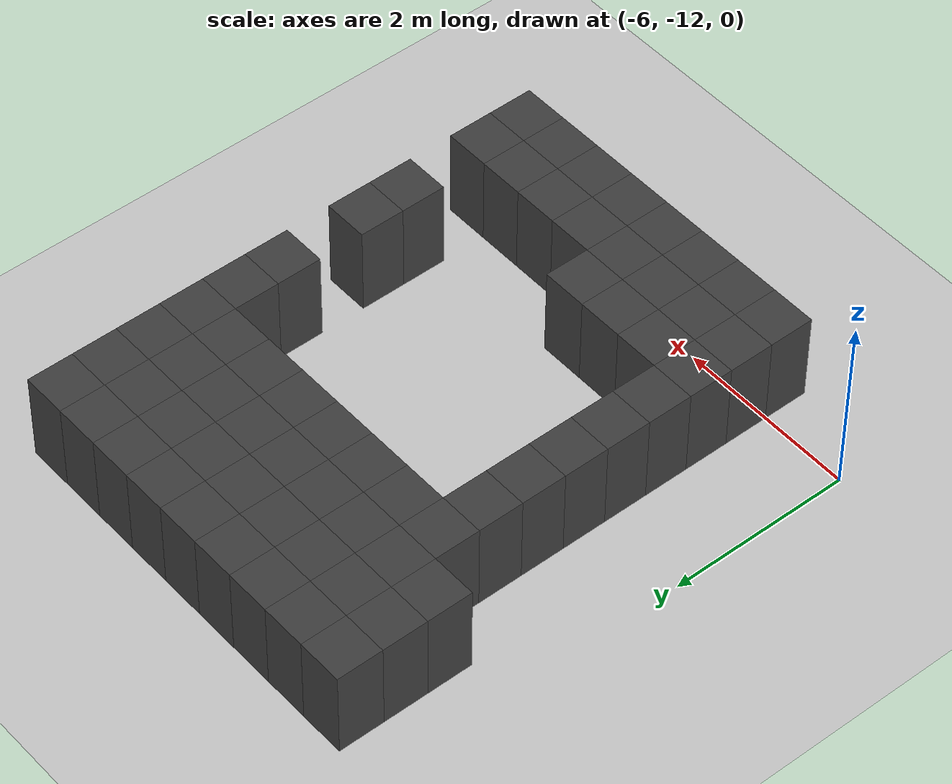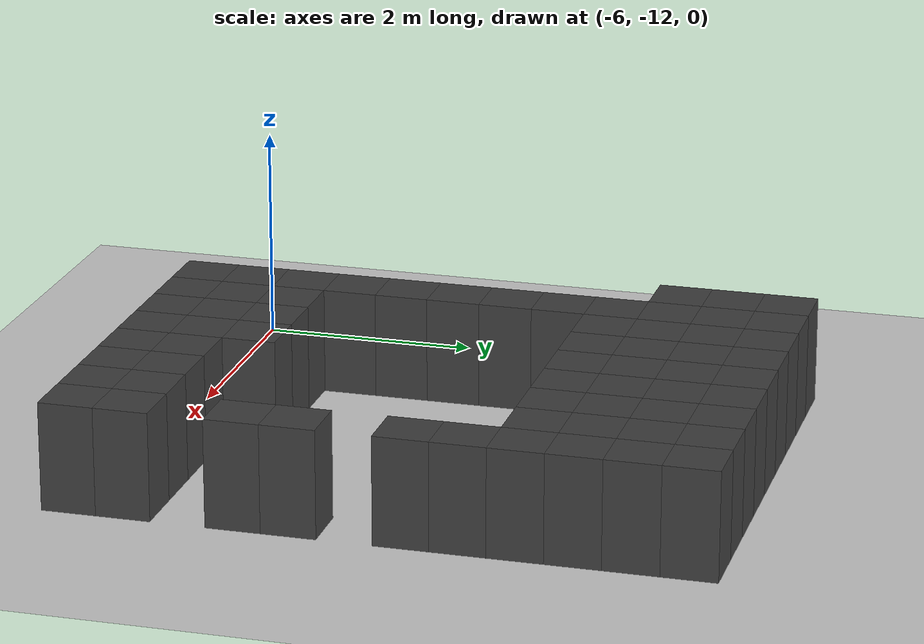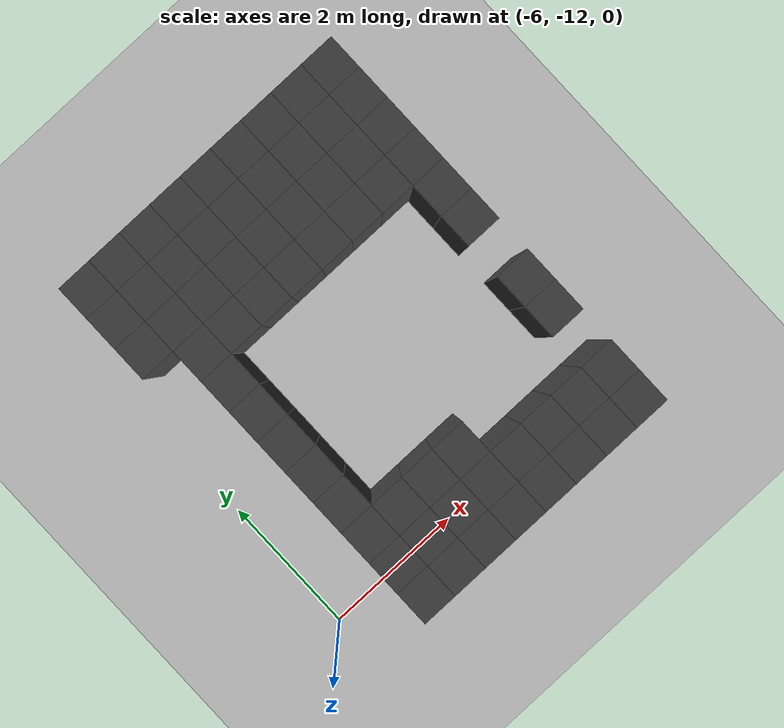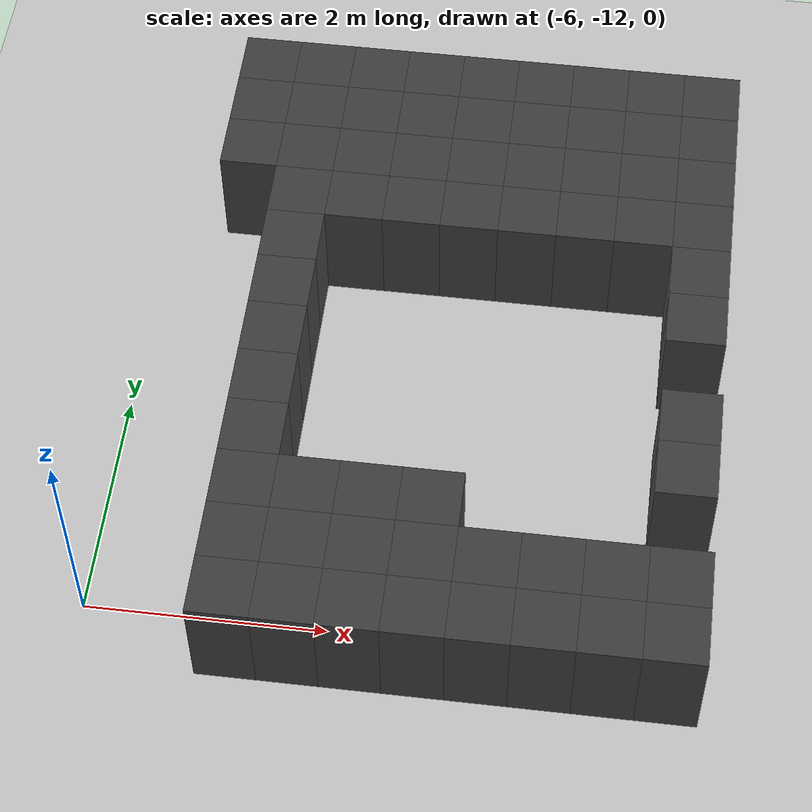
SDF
<sdf version="1.7">
 <world name="map_11515">
  <model name="ground_plane">
   <static>true</static>
   <link name="link">
    <collision name="collision">
     <geometry><plane><normal>0 0 1</normal><size>200 200</size></plane></geometry>
    </collision>
    <visual name="visual">
     <geometry><plane><normal>0 0 1</normal><size>200 200</size></plane></geometry>
     <material><ambient>0.8 0.8 0.8 1</ambient><diffuse>0.8 0.8 0.8 1</diffuse></material>
    </visual>
   </link>
  </model>
  <model name="maze_environment">
   <static>true</static>
   <link name="wall_1664">
    <pose>-5.250 -6.750 0.500 0 0 0</pose>
    <collision name="col"><geometry><box><size>0.5 0.5 1.0</size></box></geometry></collision>
    <visual name="vis">
     <geometry><box><size>0.5 0.5 1.0</size></box></geometry>
     <material><ambient>0.15 0.15 0.15 1</ambient><diffuse>0.25 0.25 0.25 1</diffuse></material>
    </visual>
   </link>
   <link name="wall_1665">
    <pose>-4.750 -6.750 0.500 0 0 0</pose>
    <collision name="col"><geometry><box><size>0.5 0.5 1.0</size></box></geometry></collision>
    <visual name="vis">
     <geometry><box><size>0.5 0.5 1.0</size></box></geometry>
     <material><ambient>0.15 0.15 0.15 1</ambient><diffuse>0.25 0.25 0.25 1</diffuse></material>
    </visual>
   </link>
   <link name="wall_1666">
    <pose>-4.250 -6.750 0.500 0 0 0</pose>
    <collision name="col"><geometry><box><size>0.5 0.5 1.0</size></box></geometry></collision>
    <visual name="vis">
     <geometry><box><size>0.5 0.5 1.0</size></box></geometry>
     <material><ambient>0.15 0.15 0.15 1</ambient><diffuse>0.25 0.25 0.25 1</diffuse></material>
    </visual>
   </link>
   <link name="wall_1667">
    <pose>-3.750 -6.750 0.500 0 0 0</pose>
    <collision name="col"><geometry><box><size>0.5 0.5 1.0</size></box></geometry></collision>
    <visual name="vis">
     <geometry><box><size>0.5 0.5 1.0</size></box></geometry>
     <material><ambient>0.15 0.15 0.15 1</ambient><diffuse>0.25 0.25 0.25 1</diffuse></material>
    </visual>
   </link>
   <link name="wall_1668">
    <pose>-3.250 -6.750 0.500 0 0 0</pose>
    <collision name="col"><geometry><box><size>0.5 0.5 1.0</size></box></geometry></collision>
    <visual name="vis">
     <geometry><box><size>0.5 0.5 1.0</size></box></geometry>
     <material><ambient>0.15 0.15 0.15 1</ambient><diffuse>0.25 0.25 0.25 1</diffuse></material>
    </visual>
   </link>
   <link name="wall_1669">
    <pose>-2.750 -6.750 0.500 0 0 0</pose>
    <collision name="col"><geometry><box><size>0.5 0.5 1.0</size></box></geometry></collision>
    <visual name="vis">
     <geometry><box><size>0.5 0.5 1.0</size></box></geometry>
     <material><ambient>0.15 0.15 0.15 1</ambient><diffuse>0.25 0.25 0.25 1</diffuse></material>
    </visual>
   </link>
   <link name="wall_1670">
    <pose>-2.250 -6.750 0.500 0 0 0</pose>
    <collision name="col"><geometry><box><size>0.5 0.5 1.0</size></box></geometry></collision>
    <visual name="vis">
     <geometry><box><size>0.5 0.5 1.0</size></box></geometry>
     <material><ambient>0.15 0.15 0.15 1</ambient><diffuse>0.25 0.25 0.25 1</diffuse></material>
    </visual>
   </link>
   <link name="wall_1671">
    <pose>-1.750 -6.750 0.500 0 0 0</pose>
    <collision name="col"><geometry><box><size>0.5 0.5 1.0</size></box></geometry></collision>
    <visual name="vis">
     <geometry><box><size>0.5 0.5 1.0</size></box></geometry>
     <material><ambient>0.15 0.15 0.15 1</ambient><diffuse>0.25 0.25 0.25 1</diffuse></material>
    </visual>
   </link>
   <link name="wall_1672">
    <pose>-1.250 -6.750 0.500 0 0 0</pose>
    <collision name="col"><geometry><box><size>0.5 0.5 1.0</size></box></geometry></collision>
    <visual name="vis">
     <geometry><box><size>0.5 0.5 1.0</size></box></geometry>
     <material><ambient>0.15 0.15 0.15 1</ambient><diffuse>0.25 0.25 0.25 1</diffuse></material>
    </visual>
   </link>
   <link name="wall_1713">
    <pose>-5.250 -7.250 0.500 0 0 0</pose>
    <collision name="col"><geometry><box><size>0.5 0.5 1.0</size></box></geometry></collision>
    <visual name="vis">
     <geometry><box><size>0.5 0.5 1.0</size></box></geometry>
     <material><ambient>0.15 0.15 0.15 1</ambient><diffuse>0.25 0.25 0.25 1</diffuse></material>
    </visual>
   </link>
   <link name="wall_1714">
    <pose>-4.750 -7.250 0.500 0 0 0</pose>
    <collision name="col"><geometry><box><size>0.5 0.5 1.0</size></box></geometry></collision>
    <visual name="vis">
     <geometry><box><size>0.5 0.5 1.0</size></box></geometry>
     <material><ambient>0.15 0.15 0.15 1</ambient><diffuse>0.25 0.25 0.25 1</diffuse></material>
    </visual>
   </link>
   <link name="wall_1715">
    <pose>-4.250 -7.250 0.500 0 0 0</pose>
    <collision name="col"><geometry><box><size>0.5 0.5 1.0</size></box></geometry></collision>
    <visual name="vis">
     <geometry><box><size>0.5 0.5 1.0</size></box></geometry>
     <material><ambient>0.15 0.15 0.15 1</ambient><diffuse>0.25 0.25 0.25 1</diffuse></material>
    </visual>
   </link>
   <link name="wall_1716">
    <pose>-3.750 -7.250 0.500 0 0 0</pose>
    <collision name="col"><geometry><box><size>0.5 0.5 1.0</size></box></geometry></collision>
    <visual name="vis">
     <geometry><box><size>0.5 0.5 1.0</size></box></geometry>
     <material><ambient>0.15 0.15 0.15 1</ambient><diffuse>0.25 0.25 0.25 1</diffuse></material>
    </visual>
   </link>
   <link name="wall_1717">
    <pose>-3.250 -7.250 0.500 0 0 0</pose>
    <collision name="col"><geometry><box><size>0.5 0.5 1.0</size></box></geometry></collision>
    <visual name="vis">
     <geometry><box><size>0.5 0.5 1.0</size></box></geometry>
     <material><ambient>0.15 0.15 0.15 1</ambient><diffuse>0.25 0.25 0.25 1</diffuse></material>
    </visual>
   </link>
   <link name="wall_1718">
    <pose>-2.750 -7.250 0.500 0 0 0</pose>
    <collision name="col"><geometry><box><size>0.5 0.5 1.0</size></box></geometry></collision>
    <visual name="vis">
     <geometry><box><size>0.5 0.5 1.0</size></box></geometry>
     <material><ambient>0.15 0.15 0.15 1</ambient><diffuse>0.25 0.25 0.25 1</diffuse></material>
    </visual>
   </link>
   <link name="wall_1719">
    <pose>-2.250 -7.250 0.500 0 0 0</pose>
    <collision name="col"><geometry><box><size>0.5 0.5 1.0</size></box></geometry></collision>
    <visual name="vis">
     <geometry><box><size>0.5 0.5 1.0</size></box></geometry>
     <material><ambient>0.15 0.15 0.15 1</ambient><diffuse>0.25 0.25 0.25 1</diffuse></material>
    </visual>
   </link>
   <link name="wall_1720">
    <pose>-1.750 -7.250 0.500 0 0 0</pose>
    <collision name="col"><geometry><box><size>0.5 0.5 1.0</size></box></geometry></collision>
    <visual name="vis">
     <geometry><box><size>0.5 0.5 1.0</size></box></geometry>
     <material><ambient>0.15 0.15 0.15 1</ambient><diffuse>0.25 0.25 0.25 1</diffuse></material>
    </visual>
   </link>
   <link name="wall_1721">
    <pose>-1.250 -7.250 0.500 0 0 0</pose>
    <collision name="col"><geometry><box><size>0.5 0.5 1.0</size></box></geometry></collision>
    <visual name="vis">
     <geometry><box><size>0.5 0.5 1.0</size></box></geometry>
     <material><ambient>0.15 0.15 0.15 1</ambient><diffuse>0.25 0.25 0.25 1</diffuse></material>
    </visual>
   </link>
   <link name="wall_1762">
    <pose>-5.250 -7.750 0.500 0 0 0</pose>
    <collision name="col"><geometry><box><size>0.5 0.5 1.0</size></box></geometry></collision>
    <visual name="vis">
     <geometry><box><size>0.5 0.5 1.0</size></box></geometry>
     <material><ambient>0.15 0.15 0.15 1</ambient><diffuse>0.25 0.25 0.25 1</diffuse></material>
    </visual>
   </link>
   <link name="wall_1763">
    <pose>-4.750 -7.750 0.500 0 0 0</pose>
    <collision name="col"><geometry><box><size>0.5 0.5 1.0</size></box></geometry></collision>
    <visual name="vis">
     <geometry><box><size>0.5 0.5 1.0</size></box></geometry>
     <material><ambient>0.15 0.15 0.15 1</ambient><diffuse>0.25 0.25 0.25 1</diffuse></material>
    </visual>
   </link>
   <link name="wall_1764">
    <pose>-4.250 -7.750 0.500 0 0 0</pose>
    <collision name="col"><geometry><box><size>0.5 0.5 1.0</size></box></geometry></collision>
    <visual name="vis">
     <geometry><box><size>0.5 0.5 1.0</size></box></geometry>
     <material><ambient>0.15 0.15 0.15 1</ambient><diffuse>0.25 0.25 0.25 1</diffuse></material>
    </visual>
   </link>
   <link name="wall_1765">
    <pose>-3.750 -7.750 0.500 0 0 0</pose>
    <collision name="col"><geometry><box><size>0.5 0.5 1.0</size></box></geometry></collision>
    <visual name="vis">
     <geometry><box><size>0.5 0.5 1.0</size></box></geometry>
     <material><ambient>0.15 0.15 0.15 1</ambient><diffuse>0.25 0.25 0.25 1</diffuse></material>
    </visual>
   </link>
   <link name="wall_1766">
    <pose>-3.250 -7.750 0.500 0 0 0</pose>
    <collision name="col"><geometry><box><size>0.5 0.5 1.0</size></box></geometry></collision>
    <visual name="vis">
     <geometry><box><size>0.5 0.5 1.0</size></box></geometry>
     <material><ambient>0.15 0.15 0.15 1</ambient><diffuse>0.25 0.25 0.25 1</diffuse></material>
    </visual>
   </link>
   <link name="wall_1767">
    <pose>-2.750 -7.750 0.500 0 0 0</pose>
    <collision name="col"><geometry><box><size>0.5 0.5 1.0</size></box></geometry></collision>
    <visual name="vis">
     <geometry><box><size>0.5 0.5 1.0</size></box></geometry>
     <material><ambient>0.15 0.15 0.15 1</ambient><diffuse>0.25 0.25 0.25 1</diffuse></material>
    </visual>
   </link>
   <link name="wall_1768">
    <pose>-2.250 -7.750 0.500 0 0 0</pose>
    <collision name="col"><geometry><box><size>0.5 0.5 1.0</size></box></geometry></collision>
    <visual name="vis">
     <geometry><box><size>0.5 0.5 1.0</size></box></geometry>
     <material><ambient>0.15 0.15 0.15 1</ambient><diffuse>0.25 0.25 0.25 1</diffuse></material>
    </visual>
   </link>
   <link name="wall_1769">
    <pose>-1.750 -7.750 0.500 0 0 0</pose>
    <collision name="col"><geometry><box><size>0.5 0.5 1.0</size></box></geometry></collision>
    <visual name="vis">
     <geometry><box><size>0.5 0.5 1.0</size></box></geometry>
     <material><ambient>0.15 0.15 0.15 1</ambient><diffuse>0.25 0.25 0.25 1</diffuse></material>
    </visual>
   </link>
   <link name="wall_1770">
    <pose>-1.250 -7.750 0.500 0 0 0</pose>
    <collision name="col"><geometry><box><size>0.5 0.5 1.0</size></box></geometry></collision>
    <visual name="vis">
     <geometry><box><size>0.5 0.5 1.0</size></box></geometry>
     <material><ambient>0.15 0.15 0.15 1</ambient><diffuse>0.25 0.25 0.25 1</diffuse></material>
    </visual>
   </link>
   <link name="wall_1812">
    <pose>-4.750 -8.250 0.500 0 0 0</pose>
    <collision name="col"><geometry><box><size>0.5 0.5 1.0</size></box></geometry></collision>
    <visual name="vis">
     <geometry><box><size>0.5 0.5 1.0</size></box></geometry>
     <material><ambient>0.15 0.15 0.15 1</ambient><diffuse>0.25 0.25 0.25 1</diffuse></material>
    </visual>
   </link>
   <link name="wall_1813">
    <pose>-4.250 -8.250 0.500 0 0 0</pose>
    <collision name="col"><geometry><box><size>0.5 0.5 1.0</size></box></geometry></collision>
    <visual name="vis">
     <geometry><box><size>0.5 0.5 1.0</size></box></geometry>
     <material><ambient>0.15 0.15 0.15 1</ambient><diffuse>0.25 0.25 0.25 1</diffuse></material>
    </visual>
   </link>
   <link name="wall_1814">
    <pose>-3.750 -8.250 0.500 0 0 0</pose>
    <collision name="col"><geometry><box><size>0.5 0.5 1.0</size></box></geometry></collision>
    <visual name="vis">
     <geometry><box><size>0.5 0.5 1.0</size></box></geometry>
     <material><ambient>0.15 0.15 0.15 1</ambient><diffuse>0.25 0.25 0.25 1</diffuse></material>
    </visual>
   </link>
   <link name="wall_1815">
    <pose>-3.250 -8.250 0.500 0 0 0</pose>
    <collision name="col"><geometry><box><size>0.5 0.5 1.0</size></box></geometry></collision>
    <visual name="vis">
     <geometry><box><size>0.5 0.5 1.0</size></box></geometry>
     <material><ambient>0.15 0.15 0.15 1</ambient><diffuse>0.25 0.25 0.25 1</diffuse></material>
    </visual>
   </link>
   <link name="wall_1816">
    <pose>-2.750 -8.250 0.500 0 0 0</pose>
    <collision name="col"><geometry><box><size>0.5 0.5 1.0</size></box></geometry></collision>
    <visual name="vis">
     <geometry><box><size>0.5 0.5 1.0</size></box></geometry>
     <material><ambient>0.15 0.15 0.15 1</ambient><diffuse>0.25 0.25 0.25 1</diffuse></material>
    </visual>
   </link>
   <link name="wall_1817">
    <pose>-2.250 -8.250 0.500 0 0 0</pose>
    <collision name="col"><geometry><box><size>0.5 0.5 1.0</size></box></geometry></collision>
    <visual name="vis">
     <geometry><box><size>0.5 0.5 1.0</size></box></geometry>
     <material><ambient>0.15 0.15 0.15 1</ambient><diffuse>0.25 0.25 0.25 1</diffuse></material>
    </visual>
   </link>
   <link name="wall_1818">
    <pose>-1.750 -8.250 0.500 0 0 0</pose>
    <collision name="col"><geometry><box><size>0.5 0.5 1.0</size></box></geometry></collision>
    <visual name="vis">
     <geometry><box><size>0.5 0.5 1.0</size></box></geometry>
     <material><ambient>0.15 0.15 0.15 1</ambient><diffuse>0.25 0.25 0.25 1</diffuse></material>
    </visual>
   </link>
   <link name="wall_1819">
    <pose>-1.250 -8.250 0.500 0 0 0</pose>
    <collision name="col"><geometry><box><size>0.5 0.5 1.0</size></box></geometry></collision>
    <visual name="vis">
     <geometry><box><size>0.5 0.5 1.0</size></box></geometry>
     <material><ambient>0.15 0.15 0.15 1</ambient><diffuse>0.25 0.25 0.25 1</diffuse></material>
    </visual>
   </link>
   <link name="wall_1861">
    <pose>-4.750 -8.750 0.500 0 0 0</pose>
    <collision name="col"><geometry><box><size>0.5 0.5 1.0</size></box></geometry></collision>
    <visual name="vis">
     <geometry><box><size>0.5 0.5 1.0</size></box></geometry>
     <material><ambient>0.15 0.15 0.15 1</ambient><diffuse>0.25 0.25 0.25 1</diffuse></material>
    </visual>
   </link>
   <link name="wall_1862">
    <pose>-1.250 -8.750 0.500 0 0 0</pose>
    <collision name="col"><geometry><box><size>0.5 0.5 1.0</size></box></geometry></collision>
    <visual name="vis">
     <geometry><box><size>0.5 0.5 1.0</size></box></geometry>
     <material><ambient>0.15 0.15 0.15 1</ambient><diffuse>0.25 0.25 0.25 1</diffuse></material>
    </visual>
   </link>
   <link name="wall_1904">
    <pose>-4.750 -9.250 0.500 0 0 0</pose>
    <collision name="col"><geometry><box><size>0.5 0.5 1.0</size></box></geometry></collision>
    <visual name="vis">
     <geometry><box><size>0.5 0.5 1.0</size></box></geometry>
     <material><ambient>0.15 0.15 0.15 1</ambient><diffuse>0.25 0.25 0.25 1</diffuse></material>
    </visual>
   </link>
   <link name="wall_1905">
    <pose>-1.250 -9.250 0.500 0 0 0</pose>
    <collision name="col"><geometry><box><size>0.5 0.5 1.0</size></box></geometry></collision>
    <visual name="vis">
     <geometry><box><size>0.5 0.5 1.0</size></box></geometry>
     <material><ambient>0.15 0.15 0.15 1</ambient><diffuse>0.25 0.25 0.25 1</diffuse></material>
    </visual>
   </link>
   <link name="wall_1947">
    <pose>-4.750 -9.750 0.500 0 0 0</pose>
    <collision name="col"><geometry><box><size>0.5 0.5 1.0</size></box></geometry></collision>
    <visual name="vis">
     <geometry><box><size>0.5 0.5 1.0</size></box></geometry>
     <material><ambient>0.15 0.15 0.15 1</ambient><diffuse>0.25 0.25 0.25 1</diffuse></material>
    </visual>
   </link>
   <link name="wall_1989">
    <pose>-4.750 -10.250 0.500 0 0 0</pose>
    <collision name="col"><geometry><box><size>0.5 0.5 1.0</size></box></geometry></collision>
    <visual name="vis">
     <geometry><box><size>0.5 0.5 1.0</size></box></geometry>
     <material><ambient>0.15 0.15 0.15 1</ambient><diffuse>0.25 0.25 0.25 1</diffuse></material>
    </visual>
   </link>
   <link name="wall_1990">
    <pose>-1.250 -10.250 0.500 0 0 0</pose>
    <collision name="col"><geometry><box><size>0.5 0.5 1.0</size></box></geometry></collision>
    <visual name="vis">
     <geometry><box><size>0.5 0.5 1.0</size></box></geometry>
     <material><ambient>0.15 0.15 0.15 1</ambient><diffuse>0.25 0.25 0.25 1</diffuse></material>
    </visual>
   </link>
   <link name="wall_2033">
    <pose>-4.750 -10.750 0.500 0 0 0</pose>
    <collision name="col"><geometry><box><size>0.5 0.5 1.0</size></box></geometry></collision>
    <visual name="vis">
     <geometry><box><size>0.5 0.5 1.0</size></box></geometry>
     <material><ambient>0.15 0.15 0.15 1</ambient><diffuse>0.25 0.25 0.25 1</diffuse></material>
    </visual>
   </link>
   <link name="wall_2034">
    <pose>-1.250 -10.750 0.500 0 0 0</pose>
    <collision name="col"><geometry><box><size>0.5 0.5 1.0</size></box></geometry></collision>
    <visual name="vis">
     <geometry><box><size>0.5 0.5 1.0</size></box></geometry>
     <material><ambient>0.15 0.15 0.15 1</ambient><diffuse>0.25 0.25 0.25 1</diffuse></material>
    </visual>
   </link>
   <link name="wall_2074">
    <pose>-4.750 -11.250 0.500 0 0 0</pose>
    <collision name="col"><geometry><box><size>0.5 0.5 1.0</size></box></geometry></collision>
    <visual name="vis">
     <geometry><box><size>0.5 0.5 1.0</size></box></geometry>
     <material><ambient>0.15 0.15 0.15 1</ambient><diffuse>0.25 0.25 0.25 1</diffuse></material>
    </visual>
   </link>
   <link name="wall_2075">
    <pose>-4.250 -11.250 0.500 0 0 0</pose>
    <collision name="col"><geometry><box><size>0.5 0.5 1.0</size></box></geometry></collision>
    <visual name="vis">
     <geometry><box><size>0.5 0.5 1.0</size></box></geometry>
     <material><ambient>0.15 0.15 0.15 1</ambient><diffuse>0.25 0.25 0.25 1</diffuse></material>
    </visual>
   </link>
   <link name="wall_2076">
    <pose>-3.750 -11.250 0.500 0 0 0</pose>
    <collision name="col"><geometry><box><size>0.5 0.5 1.0</size></box></geometry></collision>
    <visual name="vis">
     <geometry><box><size>0.5 0.5 1.0</size></box></geometry>
     <material><ambient>0.15 0.15 0.15 1</ambient><diffuse>0.25 0.25 0.25 1</diffuse></material>
    </visual>
   </link>
   <link name="wall_2077">
    <pose>-3.250 -11.250 0.500 0 0 0</pose>
    <collision name="col"><geometry><box><size>0.5 0.5 1.0</size></box></geometry></collision>
    <visual name="vis">
     <geometry><box><size>0.5 0.5 1.0</size></box></geometry>
     <material><ambient>0.15 0.15 0.15 1</ambient><diffuse>0.25 0.25 0.25 1</diffuse></material>
    </visual>
   </link>
   <link name="wall_2094">
    <pose>-4.750 -11.750 0.500 0 0 0</pose>
    <collision name="col"><geometry><box><size>0.5 0.5 1.0</size></box></geometry></collision>
    <visual name="vis">
     <geometry><box><size>0.5 0.5 1.0</size></box></geometry>
     <material><ambient>0.15 0.15 0.15 1</ambient><diffuse>0.25 0.25 0.25 1</diffuse></material>
    </visual>
   </link>
   <link name="wall_2095">
    <pose>-4.250 -11.750 0.500 0 0 0</pose>
    <collision name="col"><geometry><box><size>0.5 0.5 1.0</size></box></geometry></collision>
    <visual name="vis">
     <geometry><box><size>0.5 0.5 1.0</size></box></geometry>
     <material><ambient>0.15 0.15 0.15 1</ambient><diffuse>0.25 0.25 0.25 1</diffuse></material>
    </visual>
   </link>
   <link name="wall_2096">
    <pose>-3.750 -11.750 0.500 0 0 0</pose>
    <collision name="col"><geometry><box><size>0.5 0.5 1.0</size></box></geometry></collision>
    <visual name="vis">
     <geometry><box><size>0.5 0.5 1.0</size></box></geometry>
     <material><ambient>0.15 0.15 0.15 1</ambient><diffuse>0.25 0.25 0.25 1</diffuse></material>
    </visual>
   </link>
   <link name="wall_2097">
    <pose>-3.250 -11.750 0.500 0 0 0</pose>
    <collision name="col"><geometry><box><size>0.5 0.5 1.0</size></box></geometry></collision>
    <visual name="vis">
     <geometry><box><size>0.5 0.5 1.0</size></box></geometry>
     <material><ambient>0.15 0.15 0.15 1</ambient><diffuse>0.25 0.25 0.25 1</diffuse></material>
    </visual>
   </link>
   <link name="wall_2098">
    <pose>-2.750 -11.750 0.500 0 0 0</pose>
    <collision name="col"><geometry><box><size>0.5 0.5 1.0</size></box></geometry></collision>
    <visual name="vis">
     <geometry><box><size>0.5 0.5 1.0</size></box></geometry>
     <material><ambient>0.15 0.15 0.15 1</ambient><diffuse>0.25 0.25 0.25 1</diffuse></material>
    </visual>
   </link>
   <link name="wall_2099">
    <pose>-2.250 -11.750 0.500 0 0 0</pose>
    <collision name="col"><geometry><box><size>0.5 0.5 1.0</size></box></geometry></collision>
    <visual name="vis">
     <geometry><box><size>0.5 0.5 1.0</size></box></geometry>
     <material><ambient>0.15 0.15 0.15 1</ambient><diffuse>0.25 0.25 0.25 1</diffuse></material>
    </visual>
   </link>
   <link name="wall_2100">
    <pose>-1.750 -11.750 0.500 0 0 0</pose>
    <collision name="col"><geometry><box><size>0.5 0.5 1.0</size></box></geometry></collision>
    <visual name="vis">
     <geometry><box><size>0.5 0.5 1.0</size></box></geometry>
     <material><ambient>0.15 0.15 0.15 1</ambient><diffuse>0.25 0.25 0.25 1</diffuse></material>
    </visual>
   </link>
   <link name="wall_2101">
    <pose>-1.250 -11.750 0.500 0 0 0</pose>
    <collision name="col"><geometry><box><size>0.5 0.5 1.0</size></box></geometry></collision>
    <visual name="vis">
     <geometry><box><size>0.5 0.5 1.0</size></box></geometry>
     <material><ambient>0.15 0.15 0.15 1</ambient><diffuse>0.25 0.25 0.25 1</diffuse></material>
    </visual>
   </link>
   <link name="wall_2141">
    <pose>-4.750 -12.250 0.500 0 0 0</pose>
    <collision name="col"><geometry><box><size>0.5 0.5 1.0</size></box></geometry></collision>
    <visual name="vis">
     <geometry><box><size>0.5 0.5 1.0</size></box></geometry>
     <material><ambient>0.15 0.15 0.15 1</ambient><diffuse>0.25 0.25 0.25 1</diffuse></material>
    </visual>
   </link>
   <link name="wall_2142">
    <pose>-4.250 -12.250 0.500 0 0 0</pose>
    <collision name="col"><geometry><box><size>0.5 0.5 1.0</size></box></geometry></collision>
    <visual name="vis">
     <geometry><box><size>0.5 0.5 1.0</size></box></geometry>
     <material><ambient>0.15 0.15 0.15 1</ambient><diffuse>0.25 0.25 0.25 1</diffuse></material>
    </visual>
   </link>
   <link name="wall_2143">
    <pose>-3.750 -12.250 0.500 0 0 0</pose>
    <collision name="col"><geometry><box><size>0.5 0.5 1.0</size></box></geometry></collision>
    <visual name="vis">
     <geometry><box><size>0.5 0.5 1.0</size></box></geometry>
     <material><ambient>0.15 0.15 0.15 1</ambient><diffuse>0.25 0.25 0.25 1</diffuse></material>
    </visual>
   </link>
   <link name="wall_2144">
    <pose>-3.250 -12.250 0.500 0 0 0</pose>
    <collision name="col"><geometry><box><size>0.5 0.5 1.0</size></box></geometry></collision>
    <visual name="vis">
     <geometry><box><size>0.5 0.5 1.0</size></box></geometry>
     <material><ambient>0.15 0.15 0.15 1</ambient><diffuse>0.25 0.25 0.25 1</diffuse></material>
    </visual>
   </link>
   <link name="wall_2145">
    <pose>-2.750 -12.250 0.500 0 0 0</pose>
    <collision name="col"><geometry><box><size>0.5 0.5 1.0</size></box></geometry></collision>
    <visual name="vis">
     <geometry><box><size>0.5 0.5 1.0</size></box></geometry>
     <material><ambient>0.15 0.15 0.15 1</ambient><diffuse>0.25 0.25 0.25 1</diffuse></material>
    </visual>
   </link>
   <link name="wall_2146">
    <pose>-2.250 -12.250 0.500 0 0 0</pose>
    <collision name="col"><geometry><box><size>0.5 0.5 1.0</size></box></geometry></collision>
    <visual name="vis">
     <geometry><box><size>0.5 0.5 1.0</size></box></geometry>
     <material><ambient>0.15 0.15 0.15 1</ambient><diffuse>0.25 0.25 0.25 1</diffuse></material>
    </visual>
   </link>
   <link name="wall_2147">
    <pose>-1.750 -12.250 0.500 0 0 0</pose>
    <collision name="col"><geometry><box><size>0.5 0.5 1.0</size></box></geometry></collision>
    <visual name="vis">
     <geometry><box><size>0.5 0.5 1.0</size></box></geometry>
     <material><ambient>0.15 0.15 0.15 1</ambient><diffuse>0.25 0.25 0.25 1</diffuse></material>
    </visual>
   </link>
   <link name="wall_2148">
    <pose>-1.250 -12.250 0.500 0 0 0</pose>
    <collision name="col"><geometry><box><size>0.5 0.5 1.0</size></box></geometry></collision>
    <visual name="vis">
     <geometry><box><size>0.5 0.5 1.0</size></box></geometry>
     <material><ambient>0.15 0.15 0.15 1</ambient><diffuse>0.25 0.25 0.25 1</diffuse></material>
    </visual>
   </link>
  </model>
 </world>
</sdf>
